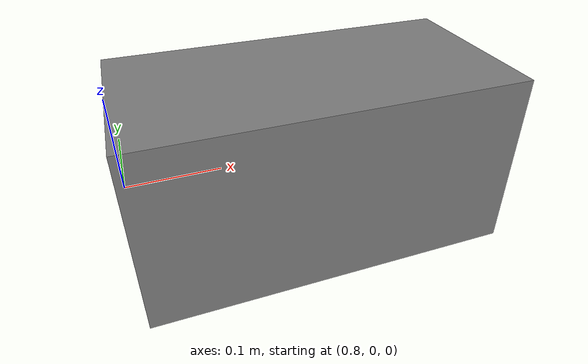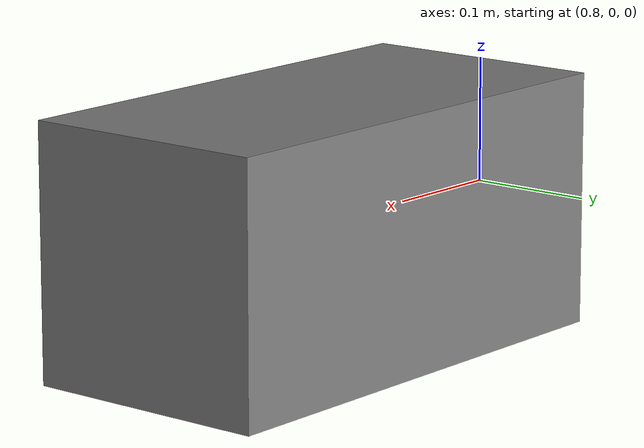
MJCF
<mujoco model="connect_offset">
            <option gravity="0 0 0" timestep="0.001"/>
            <worldbody>
                <body name="body1" pos="1 0 0">
                    <freejoint/>
                    <geom type="box" size="0.2 0.1 0.1" mass="1.0"/>
                </body>
            </worldbody>
            <equality>
                <connect body1="body1" anchor="-0.2 0 0"/>
            </equality>
        </mujoco>
